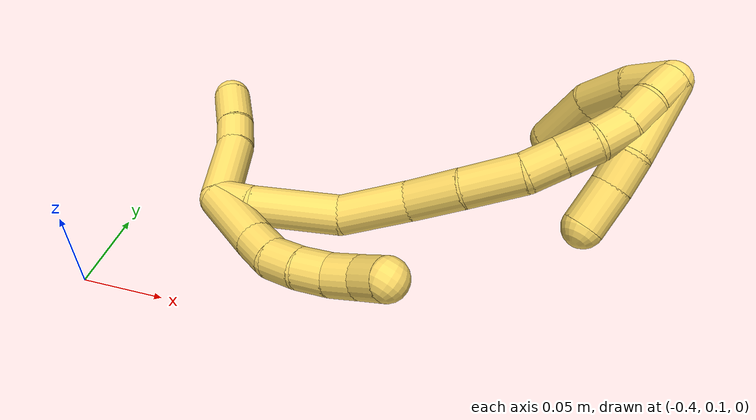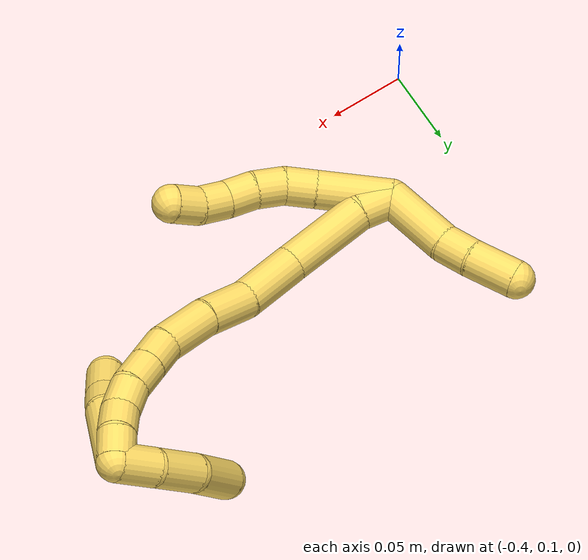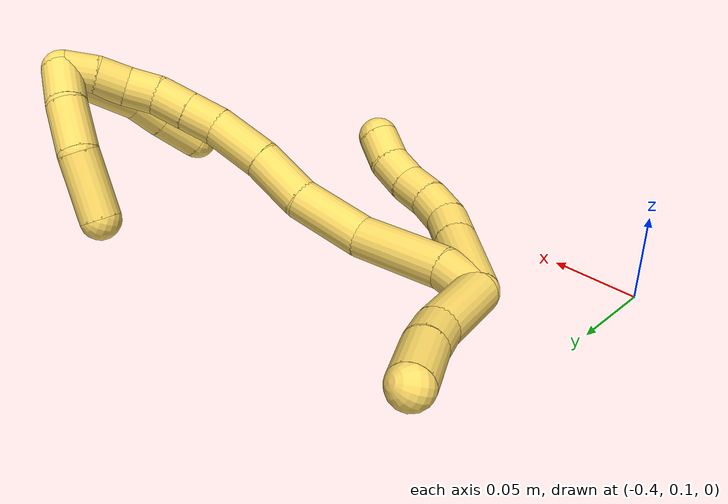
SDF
<sdf version="1.7">
 <world name="default">
  <model name="5">
   <static>0</static>
   <link name="5">
    <collision name="collision-cylinder-e_1_2_8">
     <pose>0.0235 0.00216 0.006096 -0.340552 1.30223 -0.260543</pose>
     <geometry><cylinder><radius>0.0125</radius><length>0.048747</length></cylinder></geometry>
     <surface>
      <friction><ode><mu>1.16</mu><mu2>1.16</mu2><slip1>0</slip1><slip2>0</slip2></ode></friction>
      <contact><ode><kp>1e+06</kp><kd>1</kd><max_vel>0</max_vel><min_depth>0.001</min_depth></ode></contact>
     </surface>
    </collision>
    <visual name="visual-cylinder-e_1_2_8">
     <pose>0.0235 0.00216 0.006096 -0.340552 1.30223 -0.260543</pose>
     <geometry><cylinder><radius>0.0125</radius><length>0.048747</length></cylinder></geometry>
     <material><ambient>1 0.858824 0.4 1</ambient></material>
    </visual>
    <collision name="collision-cylinder-e_2_8_9">
     <pose>0.057043 0.005664 0.014252 -0.578149 1.33066 -0.458529</pose>
     <geometry><cylinder><radius>0.0125</radius><length>0.02068</length></cylinder></geometry>
     <surface>
      <friction><ode><mu>1.16</mu><mu2>1.16</mu2><slip1>0</slip1><slip2>0</slip2></ode></friction>
      <contact><ode><kp>1e+06</kp><kd>1</kd><max_vel>0</max_vel><min_depth>0.001</min_depth></ode></contact>
     </surface>
    </collision>
    <visual name="visual-cylinder-e_2_8_9">
     <pose>0.057043 0.005664 0.014252 -0.578149 1.33066 -0.458529</pose>
     <geometry><cylinder><radius>0.0125</radius><length>0.02068</length></cylinder></geometry>
     <material><ambient>1 0.858824 0.4 1</ambient></material>
    </visual>
    <collision name="collision-cylinder-e_3_9_10">
     <pose>0.077269 0.007605 0.015095 -2.68532 1.43848 -2.62327</pose>
     <geometry><cylinder><radius>0.0125</radius><length>0.020544</length></cylinder></geometry>
     <surface>
      <friction><ode><mu>1.16</mu><mu2>1.16</mu2><slip1>0</slip1><slip2>0</slip2></ode></friction>
      <contact><ode><kp>1e+06</kp><kd>1</kd><max_vel>0</max_vel><min_depth>0.001</min_depth></ode></contact>
     </surface>
    </collision>
    <visual name="visual-cylinder-e_3_9_10">
     <pose>0.077269 0.007605 0.015095 -2.68532 1.43848 -2.62327</pose>
     <geometry><cylinder><radius>0.0125</radius><length>0.020544</length></cylinder></geometry>
     <material><ambient>1 0.858824 0.4 1</ambient></material>
    </visual>
    <collision name="collision-cylinder-e_4_10_11">
     <pose>0.097095 0.007687 0.011256 2.94752 1.30048 2.88701</pose>
     <geometry><cylinder><radius>0.0125</radius><length>0.020014</length></cylinder></geometry>
     <surface>
      <friction><ode><mu>1.16</mu><mu2>1.16</mu2><slip1>0</slip1><slip2>0</slip2></ode></friction>
      <contact><ode><kp>1e+06</kp><kd>1</kd><max_vel>0</max_vel><min_depth>0.001</min_depth></ode></contact>
     </surface>
    </collision>
    <visual name="visual-cylinder-e_4_10_11">
     <pose>0.097095 0.007687 0.011256 2.94752 1.30048 2.88701</pose>
     <geometry><cylinder><radius>0.0125</radius><length>0.020014</length></cylinder></geometry>
     <material><ambient>1 0.858824 0.4 1</ambient></material>
    </visual>
    <collision name="collision-cylinder-e_5_11_12">
     <pose>0.116105 0.00859 0.005414 -2.72671 1.21147 -2.55156</pose>
     <geometry><cylinder><radius>0.0125</radius><length>0.020011</length></cylinder></geometry>
     <surface>
      <friction><ode><mu>1.16</mu><mu2>1.16</mu2><slip1>0</slip1><slip2>0</slip2></ode></friction>
      <contact><ode><kp>1e+06</kp><kd>1</kd><max_vel>0</max_vel><min_depth>0.001</min_depth></ode></contact>
     </surface>
    </collision>
    <visual name="visual-cylinder-e_5_11_12">
     <pose>0.116105 0.00859 0.005414 -2.72671 1.21147 -2.55156</pose>
     <geometry><cylinder><radius>0.0125</radius><length>0.020011</length></cylinder></geometry>
     <material><ambient>1 0.858824 0.4 1</ambient></material>
    </visual>
    <collision name="collision-cylinder-e_6_12_6">
     <pose>0.134416 0.013952 8.1e-05 -2.06275 1.10697 -1.60247</pose>
     <geometry><cylinder><radius>0.0125</radius><length>0.020004</length></cylinder></geometry>
     <surface>
      <friction><ode><mu>1.16</mu><mu2>1.16</mu2><slip1>0</slip1><slip2>0</slip2></ode></friction>
      <contact><ode><kp>1e+06</kp><kd>1</kd><max_vel>0</max_vel><min_depth>0.001</min_depth></ode></contact>
     </surface>
    </collision>
    <visual name="visual-cylinder-e_6_12_6">
     <pose>0.134416 0.013952 8.1e-05 -2.06275 1.10697 -1.60247</pose>
     <geometry><cylinder><radius>0.0125</radius><length>0.020004</length></cylinder></geometry>
     <material><ambient>1 0.858824 0.4 1</ambient></material>
    </visual>
    <collision name="collision-cylinder-e_1_2_13">
     <pose>-0.013311 -0.005514 -0.018741 2.85544 -0.598109 -2.26734</pose>
     <geometry><cylinder><radius>0.0125</radius><length>0.047279</length></cylinder></geometry>
     <surface>
      <friction><ode><mu>1.16</mu><mu2>1.16</mu2><slip1>0</slip1><slip2>0</slip2></ode></friction>
      <contact><ode><kp>1e+06</kp><kd>1</kd><max_vel>0</max_vel><min_depth>0.001</min_depth></ode></contact>
     </surface>
    </collision>
    <visual name="visual-cylinder-e_1_2_13">
     <pose>-0.013311 -0.005514 -0.018741 2.85544 -0.598109 -2.26734</pose>
     <geometry><cylinder><radius>0.0125</radius><length>0.047279</length></cylinder></geometry>
     <material><ambient>1 0.858824 0.4 1</ambient></material>
    </visual>
    <collision name="collision-cylinder-e_2_13_14">
     <pose>-0.033801 -0.012205 -0.044861 2.98348 -0.765425 -2.75297</pose>
     <geometry><cylinder><radius>0.0125</radius><length>0.020723</length></cylinder></geometry>
     <surface>
      <friction><ode><mu>1.16</mu><mu2>1.16</mu2><slip1>0</slip1><slip2>0</slip2></ode></friction>
      <contact><ode><kp>1e+06</kp><kd>1</kd><max_vel>0</max_vel><min_depth>0.001</min_depth></ode></contact>
     </surface>
    </collision>
    <visual name="visual-cylinder-e_2_13_14">
     <pose>-0.033801 -0.012205 -0.044861 2.98348 -0.765425 -2.75297</pose>
     <geometry><cylinder><radius>0.0125</radius><length>0.020723</length></cylinder></geometry>
     <material><ambient>1 0.858824 0.4 1</ambient></material>
    </visual>
    <collision name="collision-cylinder-e_3_14_5">
     <pose>-0.053258 -0.015795 -0.062209 2.90403 -0.87481 -2.64184</pose>
     <geometry><cylinder><radius>0.0125</radius><length>0.031998</length></cylinder></geometry>
     <surface>
      <friction><ode><mu>1.16</mu><mu2>1.16</mu2><slip1>0</slip1><slip2>0</slip2></ode></friction>
      <contact><ode><kp>1e+06</kp><kd>1</kd><max_vel>0</max_vel><min_depth>0.001</min_depth></ode></contact>
     </surface>
    </collision>
    <visual name="visual-cylinder-e_3_14_5">
     <pose>-0.053258 -0.015795 -0.062209 2.90403 -0.87481 -2.64184</pose>
     <geometry><cylinder><radius>0.0125</radius><length>0.031998</length></cylinder></geometry>
     <material><ambient>1 0.858824 0.4 1</ambient></material>
    </visual>
    <collision name="collision-cylinder-e_1_2_15">
     <pose>0.011527 -0.001344 -0.00333 2.758 1.26881 2.6256</pose>
     <geometry><cylinder><radius>0.0125</radius><length>0.024147</length></cylinder></geometry>
     <surface>
      <friction><ode><mu>1.16</mu><mu2>1.16</mu2><slip1>0</slip1><slip2>0</slip2></ode></friction>
      <contact><ode><kp>1e+06</kp><kd>1</kd><max_vel>0</max_vel><min_depth>0.001</min_depth></ode></contact>
     </surface>
    </collision>
    <visual name="visual-cylinder-e_1_2_15">
     <pose>0.011527 -0.001344 -0.00333 2.758 1.26881 2.6256</pose>
     <geometry><cylinder><radius>0.0125</radius><length>0.024147</length></cylinder></geometry>
     <material><ambient>1 0.858824 0.4 1</ambient></material>
    </visual>
    <collision name="collision-cylinder-e_2_15_16">
     <pose>0.047251 -0.011118 -0.018296 2.51459 1.03491 2.10611</pose>
     <geometry><cylinder><radius>0.0125</radius><length>0.056283</length></cylinder></geometry>
     <surface>
      <friction><ode><mu>1.16</mu><mu2>1.16</mu2><slip1>0</slip1><slip2>0</slip2></ode></friction>
      <contact><ode><kp>1e+06</kp><kd>1</kd><max_vel>0</max_vel><min_depth>0.001</min_depth></ode></contact>
     </surface>
    </collision>
    <visual name="visual-cylinder-e_2_15_16">
     <pose>0.047251 -0.011118 -0.018296 2.51459 1.03491 2.10611</pose>
     <geometry><cylinder><radius>0.0125</radius><length>0.056283</length></cylinder></geometry>
     <material><ambient>1 0.858824 0.4 1</ambient></material>
    </visual>
    <collision name="collision-cylinder-e_3_16_17">
     <pose>0.088755 -0.020545 -0.043527 3.06845 0.903693 2.99111</pose>
     <geometry><cylinder><radius>0.0125</radius><length>0.044062</length></cylinder></geometry>
     <surface>
      <friction><ode><mu>1.16</mu><mu2>1.16</mu2><slip1>0</slip1><slip2>0</slip2></ode></friction>
      <contact><ode><kp>1e+06</kp><kd>1</kd><max_vel>0</max_vel><min_depth>0.001</min_depth></ode></contact>
     </surface>
    </collision>
    <visual name="visual-cylinder-e_3_16_17">
     <pose>0.088755 -0.020545 -0.043527 3.06845 0.903693 2.99111</pose>
     <geometry><cylinder><radius>0.0125</radius><length>0.044062</length></cylinder></geometry>
     <material><ambient>1 0.858824 0.4 1</ambient></material>
    </visual>
    <collision name="collision-cylinder-e_4_17_18">
     <pose>0.120677 -0.018808 -0.066512 -2.85831 0.980989 -2.61973</pose>
     <geometry><cylinder><radius>0.0125</radius><length>0.035169</length></cylinder></geometry>
     <surface>
      <friction><ode><mu>1.16</mu><mu2>1.16</mu2><slip1>0</slip1><slip2>0</slip2></ode></friction>
      <contact><ode><kp>1e+06</kp><kd>1</kd><max_vel>0</max_vel><min_depth>0.001</min_depth></ode></contact>
     </surface>
    </collision>
    <visual name="visual-cylinder-e_4_17_18">
     <pose>0.120677 -0.018808 -0.066512 -2.85831 0.980989 -2.61973</pose>
     <geometry><cylinder><radius>0.0125</radius><length>0.035169</length></cylinder></geometry>
     <material><ambient>1 0.858824 0.4 1</ambient></material>
    </visual>
    <collision name="collision-cylinder-e_5_18_19">
     <pose>0.149901 -0.01538 -0.087042 -3.07939 0.918433 -3.01592</pose>
     <geometry><cylinder><radius>0.0125</radius><length>0.036772</length></cylinder></geometry>
     <surface>
      <friction><ode><mu>1.16</mu><mu2>1.16</mu2><slip1>0</slip1><slip2>0</slip2></ode></friction>
      <contact><ode><kp>1e+06</kp><kd>1</kd><max_vel>0</max_vel><min_depth>0.001</min_depth></ode></contact>
     </surface>
    </collision>
    <visual name="visual-cylinder-e_5_18_19">
     <pose>0.149901 -0.01538 -0.087042 -3.07939 0.918433 -3.01592</pose>
     <geometry><cylinder><radius>0.0125</radius><length>0.036772</length></cylinder></geometry>
     <material><ambient>1 0.858824 0.4 1</ambient></material>
    </visual>
    <collision name="collision-cylinder-e_6_19_20">
     <pose>0.17115 -0.014973 -0.106716 3.108 0.660929 3.04373</pose>
     <geometry><cylinder><radius>0.0125</radius><length>0.021631</length></cylinder></geometry>
     <surface>
      <friction><ode><mu>1.16</mu><mu2>1.16</mu2><slip1>0</slip1><slip2>0</slip2></ode></friction>
      <contact><ode><kp>1e+06</kp><kd>1</kd><max_vel>0</max_vel><min_depth>0.001</min_depth></ode></contact>
     </surface>
    </collision>
    <visual name="visual-cylinder-e_6_19_20">
     <pose>0.17115 -0.014973 -0.106716 3.108 0.660929 3.04373</pose>
     <geometry><cylinder><radius>0.0125</radius><length>0.021631</length></cylinder></geometry>
     <material><ambient>1 0.858824 0.4 1</ambient></material>
    </visual>
    <collision name="collision-cylinder-e_7_20_21">
     <pose>0.184458 -0.015559 -0.123763 3.10638 0.66418 3.03958</pose>
     <geometry><cylinder><radius>0.0125</radius><length>0.021637</length></cylinder></geometry>
     <surface>
      <friction><ode><mu>1.16</mu><mu2>1.16</mu2><slip1>0</slip1><slip2>0</slip2></ode></friction>
      <contact><ode><kp>1e+06</kp><kd>1</kd><max_vel>0</max_vel><min_depth>0.001</min_depth></ode></contact>
     </surface>
    </collision>
    <visual name="visual-cylinder-e_7_20_21">
     <pose>0.184458 -0.015559 -0.123763 3.10638 0.66418 3.03958</pose>
     <geometry><cylinder><radius>0.0125</radius><length>0.021637</length></cylinder></geometry>
     <material><ambient>1 0.858824 0.4 1</ambient></material>
    </visual>
    <collision name="collision-cylinder-e_8_21_22">
     <pose>0.19562 -0.017677 -0.141051 2.9373 0.464719 2.32404</pose>
     <geometry><cylinder><radius>0.0125</radius><length>0.020048</length></cylinder></geometry>
     <surface>
      <friction><ode><mu>1.16</mu><mu2>1.16</mu2><slip1>0</slip1><slip2>0</slip2></ode></friction>
      <contact><ode><kp>1e+06</kp><kd>1</kd><max_vel>0</max_vel><min_depth>0.001</min_depth></ode></contact>
     </surface>
    </collision>
    <visual name="visual-cylinder-e_8_21_22">
     <pose>0.19562 -0.017677 -0.141051 2.9373 0.464719 2.32404</pose>
     <geometry><cylinder><radius>0.0125</radius><length>0.020048</length></cylinder></geometry>
     <material><ambient>1 0.858824 0.4 1</ambient></material>
    </visual>
    <collision name="collision-cylinder-e_9_22_23">
     <pose>0.202651 -0.019855 -0.159492 3.10435 0.256666 2.85493</pose>
     <geometry><cylinder><radius>0.0125</radius><length>0.020003</length></cylinder></geometry>
     <surface>
      <friction><ode><mu>1.16</mu><mu2>1.16</mu2><slip1>0</slip1><slip2>0</slip2></ode></friction>
      <contact><ode><kp>1e+06</kp><kd>1</kd><max_vel>0</max_vel><min_depth>0.001</min_depth></ode></contact>
     </surface>
    </collision>
    <visual name="visual-cylinder-e_9_22_23">
     <pose>0.202651 -0.019855 -0.159492 3.10435 0.256666 2.85493</pose>
     <geometry><cylinder><radius>0.0125</radius><length>0.020003</length></cylinder></geometry>
     <material><ambient>1 0.858824 0.4 1</ambient></material>
    </visual>
    <collision name="collision-cylinder-e_10_23_1">
     <pose>0.207063 -0.022396 -0.178867 2.92062 0.186045 1.3984</pose>
     <geometry><cylinder><radius>0.0125</radius><length>0.020247</length></cylinder></geometry>
     <surface>
      <friction><ode><mu>1.16</mu><mu2>1.16</mu2><slip1>0</slip1><slip2>0</slip2></ode></friction>
      <contact><ode><kp>1e+06</kp><kd>1</kd><max_vel>0</max_vel><min_depth>0.001</min_depth></ode></contact>
     </surface>
    </collision>
    <visual name="visual-cylinder-e_10_23_1">
     <pose>0.207063 -0.022396 -0.178867 2.92062 0.186045 1.3984</pose>
     <geometry><cylinder><radius>0.0125</radius><length>0.020247</length></cylinder></geometry>
     <material><ambient>1 0.858824 0.4 1</ambient></material>
    </visual>
    <collision name="collision-cylinder-e_1_1_24">
     <pose>0.196911 -0.030145 -0.186996 1.29475 -1.12223 -0.887213</pose>
     <geometry><cylinder><radius>0.0125</radius><length>0.026689</length></cylinder></geometry>
     <surface>
      <friction><ode><mu>1.16</mu><mu2>1.16</mu2><slip1>0</slip1><slip2>0</slip2></ode></friction>
      <contact><ode><kp>1e+06</kp><kd>1</kd><max_vel>0</max_vel><min_depth>0.001</min_depth></ode></contact>
     </surface>
    </collision>
    <visual name="visual-cylinder-e_1_1_24">
     <pose>0.196911 -0.030145 -0.186996 1.29475 -1.12223 -0.887213</pose>
     <geometry><cylinder><radius>0.0125</radius><length>0.026689</length></cylinder></geometry>
     <material><ambient>1 0.858824 0.4 1</ambient></material>
    </visual>
    <collision name="collision-cylinder-e_2_24_25">
     <pose>0.172078 -0.044295 -0.180804 1.07744 -0.920435 -0.576094</pose>
     <geometry><cylinder><radius>0.0125</radius><length>0.032188</length></cylinder></geometry>
     <surface>
      <friction><ode><mu>1.16</mu><mu2>1.16</mu2><slip1>0</slip1><slip2>0</slip2></ode></friction>
      <contact><ode><kp>1e+06</kp><kd>1</kd><max_vel>0</max_vel><min_depth>0.001</min_depth></ode></contact>
     </surface>
    </collision>
    <visual name="visual-cylinder-e_2_24_25">
     <pose>0.172078 -0.044295 -0.180804 1.07744 -0.920435 -0.576094</pose>
     <geometry><cylinder><radius>0.0125</radius><length>0.032188</length></cylinder></geometry>
     <material><ambient>1 0.858824 0.4 1</ambient></material>
    </visual>
    <collision name="collision-cylinder-e_3_25_4">
     <pose>0.147706 -0.066657 -0.16623 0.944945 -0.597255 -0.312097</pose>
     <geometry><cylinder><radius>0.0125</radius><length>0.041123</length></cylinder></geometry>
     <surface>
      <friction><ode><mu>1.16</mu><mu2>1.16</mu2><slip1>0</slip1><slip2>0</slip2></ode></friction>
      <contact><ode><kp>1e+06</kp><kd>1</kd><max_vel>0</max_vel><min_depth>0.001</min_depth></ode></contact>
     </surface>
    </collision>
    <visual name="visual-cylinder-e_3_25_4">
     <pose>0.147706 -0.066657 -0.16623 0.944945 -0.597255 -0.312097</pose>
     <geometry><cylinder><radius>0.0125</radius><length>0.041123</length></cylinder></geometry>
     <material><ambient>1 0.858824 0.4 1</ambient></material>
    </visual>
    <collision name="collision-cylinder-e_1_1_26">
     <pose>0.208199 -0.02703 -0.163071 0.095915 -0.028716 -0.001378</pose>
     <geometry><cylinder><radius>0.0125</radius><length>0.051263</length></cylinder></geometry>
     <surface>
      <friction><ode><mu>1.16</mu><mu2>1.16</mu2><slip1>0</slip1><slip2>0</slip2></ode></friction>
      <contact><ode><kp>1e+06</kp><kd>1</kd><max_vel>0</max_vel><min_depth>0.001</min_depth></ode></contact>
     </surface>
    </collision>
    <visual name="visual-cylinder-e_1_1_26">
     <pose>0.208199 -0.02703 -0.163071 0.095915 -0.028716 -0.001378</pose>
     <geometry><cylinder><radius>0.0125</radius><length>0.051263</length></cylinder></geometry>
     <material><ambient>1 0.858824 0.4 1</ambient></material>
    </visual>
    <collision name="collision-cylinder-e_2_26_27">
     <pose>0.206046 -0.032415 -0.127573 0.285264 -0.135279 -0.019456</pose>
     <geometry><cylinder><radius>0.0125</radius><length>0.021024</length></cylinder></geometry>
     <surface>
      <friction><ode><mu>1.16</mu><mu2>1.16</mu2><slip1>0</slip1><slip2>0</slip2></ode></friction>
      <contact><ode><kp>1e+06</kp><kd>1</kd><max_vel>0</max_vel><min_depth>0.001</min_depth></ode></contact>
     </surface>
    </collision>
    <visual name="visual-cylinder-e_2_26_27">
     <pose>0.206046 -0.032415 -0.127573 0.285264 -0.135279 -0.019456</pose>
     <geometry><cylinder><radius>0.0125</radius><length>0.021024</length></cylinder></geometry>
     <material><ambient>1 0.858824 0.4 1</ambient></material>
    </visual>
    <collision name="collision-cylinder-e_3_27_3">
     <pose>0.202264 -0.038153 -0.104216 0.207066 -0.171399 -0.017852</pose>
     <geometry><cylinder><radius>0.0125</radius><length>0.027714</length></cylinder></geometry>
     <surface>
      <friction><ode><mu>1.16</mu><mu2>1.16</mu2><slip1>0</slip1><slip2>0</slip2></ode></friction>
      <contact><ode><kp>1e+06</kp><kd>1</kd><max_vel>0</max_vel><min_depth>0.001</min_depth></ode></contact>
     </surface>
    </collision>
    <visual name="visual-cylinder-e_3_27_3">
     <pose>0.202264 -0.038153 -0.104216 0.207066 -0.171399 -0.017852</pose>
     <geometry><cylinder><radius>0.0125</radius><length>0.027714</length></cylinder></geometry>
     <material><ambient>1 0.858824 0.4 1</ambient></material>
    </visual>
    <collision name="collision-sphere-3">
     <pose>0.199901 -0.040961 -0.090854 0 -0 0</pose>
     <geometry><sphere><radius>0.0125</radius></sphere></geometry>
     <surface>
      <friction><ode><mu>1.16</mu><mu2>1.16</mu2><slip1>0</slip1><slip2>0</slip2></ode></friction>
      <contact><ode><kp>1e+06</kp><kd>1</kd><max_vel>0</max_vel><min_depth>0.001</min_depth></ode></contact>
     </surface>
    </collision>
    <visual name="visual-sphere-3">
     <pose>0.199901 -0.040961 -0.090854 0 -0 0</pose>
     <geometry><sphere><radius>0.0125</radius></sphere></geometry>
     <material><ambient>1 0.858824 0.4 1</ambient></material>
    </visual>
    <collision name="collision-sphere-27">
     <pose>0.204628 -0.035346 -0.117578 0 -0 0</pose>
     <geometry><sphere><radius>0.0125</radius></sphere></geometry>
     <surface>
      <friction><ode><mu>1.16</mu><mu2>1.16</mu2><slip1>0</slip1><slip2>0</slip2></ode></friction>
      <contact><ode><kp>1e+06</kp><kd>1</kd><max_vel>0</max_vel><min_depth>0.001</min_depth></ode></contact>
     </surface>
    </collision>
    <visual name="visual-sphere-27">
     <pose>0.204628 -0.035346 -0.117578 0 -0 0</pose>
     <geometry><sphere><radius>0.0125</radius></sphere></geometry>
     <material><ambient>1 0.858824 0.4 1</ambient></material>
    </visual>
    <collision name="collision-sphere-26">
     <pose>0.207463 -0.029484 -0.137568 0 -0 0</pose>
     <geometry><sphere><radius>0.0125</radius></sphere></geometry>
     <surface>
      <friction><ode><mu>1.16</mu><mu2>1.16</mu2><slip1>0</slip1><slip2>0</slip2></ode></friction>
      <contact><ode><kp>1e+06</kp><kd>1</kd><max_vel>0</max_vel><min_depth>0.001</min_depth></ode></contact>
     </surface>
    </collision>
    <visual name="visual-sphere-26">
     <pose>0.207463 -0.029484 -0.137568 0 -0 0</pose>
     <geometry><sphere><radius>0.0125</radius></sphere></geometry>
     <material><ambient>1 0.858824 0.4 1</ambient></material>
    </visual>
    <collision name="collision-sphere-4">
     <pose>0.136143 -0.080437 -0.15627 0 -0 0</pose>
     <geometry><sphere><radius>0.0125</radius></sphere></geometry>
     <surface>
      <friction><ode><mu>1.16</mu><mu2>1.16</mu2><slip1>0</slip1><slip2>0</slip2></ode></friction>
      <contact><ode><kp>1e+06</kp><kd>1</kd><max_vel>0</max_vel><min_depth>0.001</min_depth></ode></contact>
     </surface>
    </collision>
    <visual name="visual-sphere-4">
     <pose>0.136143 -0.080437 -0.15627 0 -0 0</pose>
     <geometry><sphere><radius>0.0125</radius></sphere></geometry>
     <material><ambient>1 0.858824 0.4 1</ambient></material>
    </visual>
    <collision name="collision-sphere-25">
     <pose>0.15927 -0.052878 -0.176189 0 -0 0</pose>
     <geometry><sphere><radius>0.0125</radius></sphere></geometry>
     <surface>
      <friction><ode><mu>1.16</mu><mu2>1.16</mu2><slip1>0</slip1><slip2>0</slip2></ode></friction>
      <contact><ode><kp>1e+06</kp><kd>1</kd><max_vel>0</max_vel><min_depth>0.001</min_depth></ode></contact>
     </surface>
    </collision>
    <visual name="visual-sphere-25">
     <pose>0.15927 -0.052878 -0.176189 0 -0 0</pose>
     <geometry><sphere><radius>0.0125</radius></sphere></geometry>
     <material><ambient>1 0.858824 0.4 1</ambient></material>
    </visual>
    <collision name="collision-sphere-24">
     <pose>0.184887 -0.035713 -0.185419 0 -0 0</pose>
     <geometry><sphere><radius>0.0125</radius></sphere></geometry>
     <surface>
      <friction><ode><mu>1.16</mu><mu2>1.16</mu2><slip1>0</slip1><slip2>0</slip2></ode></friction>
      <contact><ode><kp>1e+06</kp><kd>1</kd><max_vel>0</max_vel><min_depth>0.001</min_depth></ode></contact>
     </surface>
    </collision>
    <visual name="visual-sphere-24">
     <pose>0.184887 -0.035713 -0.185419 0 -0 0</pose>
     <geometry><sphere><radius>0.0125</radius></sphere></geometry>
     <material><ambient>1 0.858824 0.4 1</ambient></material>
    </visual>
    <collision name="collision-sphere-1">
     <pose>0.208935 -0.024577 -0.188574 0 -0 0</pose>
     <geometry><sphere><radius>0.0125</radius></sphere></geometry>
     <surface>
      <friction><ode><mu>1.16</mu><mu2>1.16</mu2><slip1>0</slip1><slip2>0</slip2></ode></friction>
      <contact><ode><kp>1e+06</kp><kd>1</kd><max_vel>0</max_vel><min_depth>0.001</min_depth></ode></contact>
     </surface>
    </collision>
    <visual name="visual-sphere-1">
     <pose>0.208935 -0.024577 -0.188574 0 -0 0</pose>
     <geometry><sphere><radius>0.0125</radius></sphere></geometry>
     <material><ambient>1 0.858824 0.4 1</ambient></material>
    </visual>
    <collision name="collision-sphere-23">
     <pose>0.20519 -0.020216 -0.169159 0 -0 0</pose>
     <geometry><sphere><radius>0.0125</radius></sphere></geometry>
     <surface>
      <friction><ode><mu>1.16</mu><mu2>1.16</mu2><slip1>0</slip1><slip2>0</slip2></ode></friction>
      <contact><ode><kp>1e+06</kp><kd>1</kd><max_vel>0</max_vel><min_depth>0.001</min_depth></ode></contact>
     </surface>
    </collision>
    <visual name="visual-sphere-23">
     <pose>0.20519 -0.020216 -0.169159 0 -0 0</pose>
     <geometry><sphere><radius>0.0125</radius></sphere></geometry>
     <material><ambient>1 0.858824 0.4 1</ambient></material>
    </visual>
    <collision name="collision-sphere-22">
     <pose>0.200112 -0.019495 -0.149825 0 -0 0</pose>
     <geometry><sphere><radius>0.0125</radius></sphere></geometry>
     <surface>
      <friction><ode><mu>1.16</mu><mu2>1.16</mu2><slip1>0</slip1><slip2>0</slip2></ode></friction>
      <contact><ode><kp>1e+06</kp><kd>1</kd><max_vel>0</max_vel><min_depth>0.001</min_depth></ode></contact>
     </surface>
    </collision>
    <visual name="visual-sphere-22">
     <pose>0.200112 -0.019495 -0.149825 0 -0 0</pose>
     <geometry><sphere><radius>0.0125</radius></sphere></geometry>
     <material><ambient>1 0.858824 0.4 1</ambient></material>
    </visual>
    <collision name="collision-sphere-21">
     <pose>0.191127 -0.015859 -0.132276 0 -0 0</pose>
     <geometry><sphere><radius>0.0125</radius></sphere></geometry>
     <surface>
      <friction><ode><mu>1.16</mu><mu2>1.16</mu2><slip1>0</slip1><slip2>0</slip2></ode></friction>
      <contact><ode><kp>1e+06</kp><kd>1</kd><max_vel>0</max_vel><min_depth>0.001</min_depth></ode></contact>
     </surface>
    </collision>
    <visual name="visual-sphere-21">
     <pose>0.191127 -0.015859 -0.132276 0 -0 0</pose>
     <geometry><sphere><radius>0.0125</radius></sphere></geometry>
     <material><ambient>1 0.858824 0.4 1</ambient></material>
    </visual>
    <collision name="collision-sphere-12">
     <pose>0.125471 0.010008 0.002194 0 -0 0</pose>
     <geometry><sphere><radius>0.0125</radius></sphere></geometry>
     <surface>
      <friction><ode><mu>1.16</mu><mu2>1.16</mu2><slip1>0</slip1><slip2>0</slip2></ode></friction>
      <contact><ode><kp>1e+06</kp><kd>1</kd><max_vel>0</max_vel><min_depth>0.001</min_depth></ode></contact>
     </surface>
    </collision>
    <visual name="visual-sphere-12">
     <pose>0.125471 0.010008 0.002194 0 -0 0</pose>
     <geometry><sphere><radius>0.0125</radius></sphere></geometry>
     <material><ambient>1 0.858824 0.4 1</ambient></material>
    </visual>
    <collision name="collision-sphere-11">
     <pose>0.106738 0.007172 0.008634 0 -0 0</pose>
     <geometry><sphere><radius>0.0125</radius></sphere></geometry>
     <surface>
      <friction><ode><mu>1.16</mu><mu2>1.16</mu2><slip1>0</slip1><slip2>0</slip2></ode></friction>
      <contact><ode><kp>1e+06</kp><kd>1</kd><max_vel>0</max_vel><min_depth>0.001</min_depth></ode></contact>
     </surface>
    </collision>
    <visual name="visual-sphere-11">
     <pose>0.106738 0.007172 0.008634 0 -0 0</pose>
     <geometry><sphere><radius>0.0125</radius></sphere></geometry>
     <material><ambient>1 0.858824 0.4 1</ambient></material>
    </visual>
    <collision name="collision-sphere-10">
     <pose>0.087451 0.008202 0.013878 0 -0 0</pose>
     <geometry><sphere><radius>0.0125</radius></sphere></geometry>
     <surface>
      <friction><ode><mu>1.16</mu><mu2>1.16</mu2><slip1>0</slip1><slip2>0</slip2></ode></friction>
      <contact><ode><kp>1e+06</kp><kd>1</kd><max_vel>0</max_vel><min_depth>0.001</min_depth></ode></contact>
     </surface>
    </collision>
    <visual name="visual-sphere-10">
     <pose>0.087451 0.008202 0.013878 0 -0 0</pose>
     <geometry><sphere><radius>0.0125</radius></sphere></geometry>
     <material><ambient>1 0.858824 0.4 1</ambient></material>
    </visual>
    <collision name="collision-sphere-9">
     <pose>0.067086 0.007008 0.016311 0 -0 0</pose>
     <geometry><sphere><radius>0.0125</radius></sphere></geometry>
     <surface>
      <friction><ode><mu>1.16</mu><mu2>1.16</mu2><slip1>0</slip1><slip2>0</slip2></ode></friction>
      <contact><ode><kp>1e+06</kp><kd>1</kd><max_vel>0</max_vel><min_depth>0.001</min_depth></ode></contact>
     </surface>
    </collision>
    <visual name="visual-sphere-9">
     <pose>0.067086 0.007008 0.016311 0 -0 0</pose>
     <geometry><sphere><radius>0.0125</radius></sphere></geometry>
     <material><ambient>1 0.858824 0.4 1</ambient></material>
    </visual>
    <collision name="collision-sphere-2">
     <geometry><sphere><radius>0.0125</radius></sphere></geometry>
     <surface>
      <friction><ode><mu>1.16</mu><mu2>1.16</mu2><slip1>0</slip1><slip2>0</slip2></ode></friction>
      <contact><ode><kp>1e+06</kp><kd>1</kd><max_vel>0</max_vel><min_depth>0.001</min_depth></ode></contact>
     </surface>
    </collision>
    <visual name="visual-sphere-2">
     <geometry><sphere><radius>0.0125</radius></sphere></geometry>
     <material><ambient>1 0.858824 0.4 1</ambient></material>
    </visual>
    <collision name="collision-sphere-19">
     <pose>0.164511 -0.014686 -0.098182 0 -0 0</pose>
     <geometry><sphere><radius>0.0125</radius></sphere></geometry>
     <surface>
      <friction><ode><mu>1.16</mu><mu2>1.16</mu2><slip1>0</slip1><slip2>0</slip2></ode></friction>
      <contact><ode><kp>1e+06</kp><kd>1</kd><max_vel>0</max_vel><min_depth>0.001</min_depth></ode></contact>
     </surface>
    </collision>
    <visual name="visual-sphere-19">
     <pose>0.164511 -0.014686 -0.098182 0 -0 0</pose>
     <geometry><sphere><radius>0.0125</radius></sphere></geometry>
     <material><ambient>1 0.858824 0.4 1</ambient></material>
    </visual>
    <collision name="collision-sphere-8">
     <pose>0.046999 0.00432 0.012192 0 -0 0</pose>
     <geometry><sphere><radius>0.0125</radius></sphere></geometry>
     <surface>
      <friction><ode><mu>1.16</mu><mu2>1.16</mu2><slip1>0</slip1><slip2>0</slip2></ode></friction>
      <contact><ode><kp>1e+06</kp><kd>1</kd><max_vel>0</max_vel><min_depth>0.001</min_depth></ode></contact>
     </surface>
    </collision>
    <visual name="visual-sphere-8">
     <pose>0.046999 0.00432 0.012192 0 -0 0</pose>
     <geometry><sphere><radius>0.0125</radius></sphere></geometry>
     <material><ambient>1 0.858824 0.4 1</ambient></material>
    </visual>
    <collision name="collision-sphere-6">
     <pose>0.143361 0.017896 -0.002033 0 -0 0</pose>
     <geometry><sphere><radius>0.0125</radius></sphere></geometry>
     <surface>
      <friction><ode><mu>1.16</mu><mu2>1.16</mu2><slip1>0</slip1><slip2>0</slip2></ode></friction>
      <contact><ode><kp>1e+06</kp><kd>1</kd><max_vel>0</max_vel><min_depth>0.001</min_depth></ode></contact>
     </surface>
    </collision>
    <visual name="visual-sphere-6">
     <pose>0.143361 0.017896 -0.002033 0 -0 0</pose>
     <geometry><sphere><radius>0.0125</radius></sphere></geometry>
     <material><ambient>1 0.858824 0.4 1</ambient></material>
    </visual>
    <collision name="collision-sphere-13">
     <pose>-0.026622 -0.011028 -0.037483 0 -0 0</pose>
     <geometry><sphere><radius>0.0125</radius></sphere></geometry>
     <surface>
      <friction><ode><mu>1.16</mu><mu2>1.16</mu2><slip1>0</slip1><slip2>0</slip2></ode></friction>
      <contact><ode><kp>1e+06</kp><kd>1</kd><max_vel>0</max_vel><min_depth>0.001</min_depth></ode></contact>
     </surface>
    </collision>
    <visual name="visual-sphere-13">
     <pose>-0.026622 -0.011028 -0.037483 0 -0 0</pose>
     <geometry><sphere><radius>0.0125</radius></sphere></geometry>
     <material><ambient>1 0.858824 0.4 1</ambient></material>
    </visual>
    <collision name="collision-sphere-14">
     <pose>-0.04098 -0.013381 -0.052239 0 -0 0</pose>
     <geometry><sphere><radius>0.0125</radius></sphere></geometry>
     <surface>
      <friction><ode><mu>1.16</mu><mu2>1.16</mu2><slip1>0</slip1><slip2>0</slip2></ode></friction>
      <contact><ode><kp>1e+06</kp><kd>1</kd><max_vel>0</max_vel><min_depth>0.001</min_depth></ode></contact>
     </surface>
    </collision>
    <visual name="visual-sphere-14">
     <pose>-0.04098 -0.013381 -0.052239 0 -0 0</pose>
     <geometry><sphere><radius>0.0125</radius></sphere></geometry>
     <material><ambient>1 0.858824 0.4 1</ambient></material>
    </visual>
    <collision name="collision-sphere-5">
     <pose>-0.065536 -0.018209 -0.072179 0 -0 0</pose>
     <geometry><sphere><radius>0.0125</radius></sphere></geometry>
     <surface>
      <friction><ode><mu>1.16</mu><mu2>1.16</mu2><slip1>0</slip1><slip2>0</slip2></ode></friction>
      <contact><ode><kp>1e+06</kp><kd>1</kd><max_vel>0</max_vel><min_depth>0.001</min_depth></ode></contact>
     </surface>
    </collision>
    <visual name="visual-sphere-5">
     <pose>-0.065536 -0.018209 -0.072179 0 -0 0</pose>
     <geometry><sphere><radius>0.0125</radius></sphere></geometry>
     <material><ambient>1 0.858824 0.4 1</ambient></material>
    </visual>
    <collision name="collision-sphere-15">
     <pose>0.023054 -0.002688 -0.00666 0 -0 0</pose>
     <geometry><sphere><radius>0.0125</radius></sphere></geometry>
     <surface>
      <friction><ode><mu>1.16</mu><mu2>1.16</mu2><slip1>0</slip1><slip2>0</slip2></ode></friction>
      <contact><ode><kp>1e+06</kp><kd>1</kd><max_vel>0</max_vel><min_depth>0.001</min_depth></ode></contact>
     </surface>
    </collision>
    <visual name="visual-sphere-15">
     <pose>0.023054 -0.002688 -0.00666 0 -0 0</pose>
     <geometry><sphere><radius>0.0125</radius></sphere></geometry>
     <material><ambient>1 0.858824 0.4 1</ambient></material>
    </visual>
    <collision name="collision-sphere-16">
     <pose>0.071447 -0.019549 -0.029932 0 -0 0</pose>
     <geometry><sphere><radius>0.0125</radius></sphere></geometry>
     <surface>
      <friction><ode><mu>1.16</mu><mu2>1.16</mu2><slip1>0</slip1><slip2>0</slip2></ode></friction>
      <contact><ode><kp>1e+06</kp><kd>1</kd><max_vel>0</max_vel><min_depth>0.001</min_depth></ode></contact>
     </surface>
    </collision>
    <visual name="visual-sphere-16">
     <pose>0.071447 -0.019549 -0.029932 0 -0 0</pose>
     <geometry><sphere><radius>0.0125</radius></sphere></geometry>
     <material><ambient>1 0.858824 0.4 1</ambient></material>
    </visual>
    <collision name="collision-sphere-17">
     <pose>0.106063 -0.021541 -0.057121 0 -0 0</pose>
     <geometry><sphere><radius>0.0125</radius></sphere></geometry>
     <surface>
      <friction><ode><mu>1.16</mu><mu2>1.16</mu2><slip1>0</slip1><slip2>0</slip2></ode></friction>
      <contact><ode><kp>1e+06</kp><kd>1</kd><max_vel>0</max_vel><min_depth>0.001</min_depth></ode></contact>
     </surface>
    </collision>
    <visual name="visual-sphere-17">
     <pose>0.106063 -0.021541 -0.057121 0 -0 0</pose>
     <geometry><sphere><radius>0.0125</radius></sphere></geometry>
     <material><ambient>1 0.858824 0.4 1</ambient></material>
    </visual>
    <collision name="collision-sphere-18">
     <pose>0.13529 -0.016074 -0.075902 0 -0 0</pose>
     <geometry><sphere><radius>0.0125</radius></sphere></geometry>
     <surface>
      <friction><ode><mu>1.16</mu><mu2>1.16</mu2><slip1>0</slip1><slip2>0</slip2></ode></friction>
      <contact><ode><kp>1e+06</kp><kd>1</kd><max_vel>0</max_vel><min_depth>0.001</min_depth></ode></contact>
     </surface>
    </collision>
    <visual name="visual-sphere-18">
     <pose>0.13529 -0.016074 -0.075902 0 -0 0</pose>
     <geometry><sphere><radius>0.0125</radius></sphere></geometry>
     <material><ambient>1 0.858824 0.4 1</ambient></material>
    </visual>
    <collision name="collision-sphere-20">
     <pose>0.17779 -0.01526 -0.115249 0 -0 0</pose>
     <geometry><sphere><radius>0.0125</radius></sphere></geometry>
     <surface>
      <friction><ode><mu>1.16</mu><mu2>1.16</mu2><slip1>0</slip1><slip2>0</slip2></ode></friction>
      <contact><ode><kp>1e+06</kp><kd>1</kd><max_vel>0</max_vel><min_depth>0.001</min_depth></ode></contact>
     </surface>
    </collision>
    <visual name="visual-sphere-20">
     <pose>0.17779 -0.01526 -0.115249 0 -0 0</pose>
     <geometry><sphere><radius>0.0125</radius></sphere></geometry>
     <material><ambient>1 0.858824 0.4 1</ambient></material>
    </visual>
    <inertial>
     <pose>0.109038 -0.01705 -0.076452 0 -0 0</pose>
     <mass>0.75</mass>
     <inertia><ixx>1e-05</ixx><ixy>0</ixy><ixz>0</ixz><iyy>8.9e-05</iyy><iyz>0</iyz><izz>-2.6e-05</izz></inertia>
    </inertial>
   </link>
   <pose>-0.346117 0.173649 0.012456 2.02425 -0.092737 -0.4052</pose>
  </model>
 </world>
</sdf>
